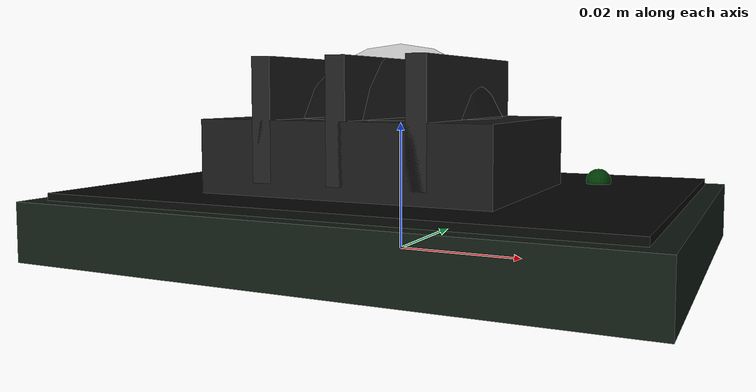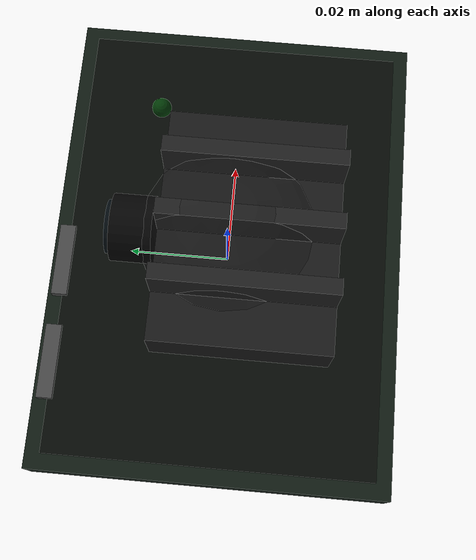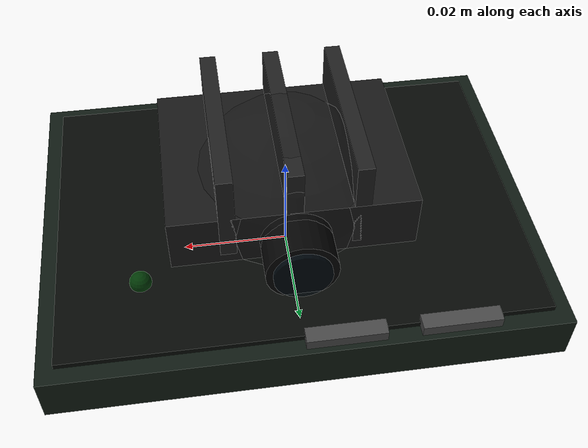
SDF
<?xml version="1.0" encoding="UTF-8"?>
<sdf version='1.9'>
  <model name='jetson_dome'>
    <self_collide>false</self_collide>
    <static>false</static>

    <link name='jetson_link'>
      <inertial>
        <pose>0 0 0.0115 0 0 0</pose>
        <mass>0.22</mass>
        <inertia>
          <ixx>0.00012</ixx>
          <iyy>0.00011</iyy>
          <izz>0.00018</izz>
          <ixy>0</ixy>
          <ixz>0</ixz>
          <iyz>0</iyz>
        </inertia>
      </inertial>

      <collision name='board_collision'>
        <pose>0 0 0.0045 0 0 0</pose>
        <geometry>
          <box>
            <size>0.092 0.068 0.009</size>
          </box>
        </geometry>
      </collision>

      <collision name='dome_collision'>
        <pose>0 0 0.0155 0 0 0</pose>
        <geometry>
          <cylinder>
            <radius>0.017</radius>
            <length>0.014</length>
          </cylinder>
        </geometry>
      </collision>

      <visual name='board_visual'>
        <pose>0 0 0.0045 0 0 0</pose>
        <geometry>
          <box>
            <size>0.092 0.068 0.009</size>
          </box>
        </geometry>
        <material>
          <ambient>0.06 0.10 0.07 1</ambient>
          <diffuse>0.06 0.10 0.07 1</diffuse>
          <specular>0.15 0.15 0.15 1</specular>
        </material>
      </visual>

      <visual name='board_top_visual'>
        <pose>0 0 0.0095 0 0 0</pose>
        <geometry>
          <box>
            <size>0.086 0.062 0.0012</size>
          </box>
        </geometry>
        <material>
          <ambient>0.02 0.03 0.02 1</ambient>
          <diffuse>0.02 0.03 0.02 1</diffuse>
          <specular>0.08 0.08 0.08 1</specular>
        </material>
      </visual>

      <visual name='dome_visual'>
        <pose>0 0 0.0155 0 0 0</pose>
        <geometry>
          <sphere>
            <radius>0.017</radius>
          </sphere>
        </geometry>
        <material>
          <ambient>0.05 0.05 0.05 0.22</ambient>
          <diffuse>0.10 0.10 0.10 0.22</diffuse>
          <specular>0.65 0.65 0.65 1</specular>
        </material>
      </visual>

      <visual name='camera_lens_visual'>
        <pose>0 0.018 0.0155 1.5708 0 0</pose>
        <geometry>
          <cylinder>
            <radius>0.0065</radius>
            <length>0.008</length>
          </cylinder>
        </geometry>
        <material>
          <ambient>0.01 0.01 0.01 1</ambient>
          <diffuse>0.01 0.01 0.01 1</diffuse>
          <specular>0.9 0.9 0.9 1</specular>
        </material>
      </visual>

      <visual name='camera_glass_visual'>
        <pose>0 0.0225 0.0155 1.5708 0 0</pose>
        <geometry>
          <cylinder>
            <radius>0.0052</radius>
            <length>0.001</length>
          </cylinder>
        </geometry>
        <material>
          <ambient>0.03 0.08 0.12 0.55</ambient>
          <diffuse>0.03 0.08 0.12 0.55</diffuse>
          <specular>0.95 0.95 0.95 1</specular>
          <emissive>0.0 0.02 0.04 0.18</emissive>
        </material>
      </visual>

      <visual name='heatsink_core_visual'>
        <pose>0 -0.004 0.015 0 0 0</pose>
        <geometry>
          <box>
            <size>0.045 0.034 0.012</size>
          </box>
        </geometry>
        <material>
          <ambient>0.09 0.09 0.09 1</ambient>
          <diffuse>0.09 0.09 0.09 1</diffuse>
          <specular>0.25 0.25 0.25 1</specular>
        </material>
      </visual>

      <visual name='heatsink_fin_left_visual'>
        <pose>-0.012 -0.004 0.021 0 0 0</pose>
        <geometry>
          <box>
            <size>0.003 0.034 0.018</size>
          </box>
        </geometry>
        <material>
          <ambient>0.12 0.12 0.12 1</ambient>
          <diffuse>0.12 0.12 0.12 1</diffuse>
          <specular>0.25 0.25 0.25 1</specular>
        </material>
      </visual>

      <visual name='heatsink_fin_center_visual'>
        <pose>0 -0.004 0.021 0 0 0</pose>
        <geometry>
          <box>
            <size>0.003 0.034 0.018</size>
          </box>
        </geometry>
        <material>
          <ambient>0.12 0.12 0.12 1</ambient>
          <diffuse>0.12 0.12 0.12 1</diffuse>
          <specular>0.25 0.25 0.25 1</specular>
        </material>
      </visual>

      <visual name='heatsink_fin_right_visual'>
        <pose>0.012 -0.004 0.021 0 0 0</pose>
        <geometry>
          <box>
            <size>0.003 0.034 0.018</size>
          </box>
        </geometry>
        <material>
          <ambient>0.12 0.12 0.12 1</ambient>
          <diffuse>0.12 0.12 0.12 1</diffuse>
          <specular>0.25 0.25 0.25 1</specular>
        </material>
      </visual>

      <visual name='usb_port_left_visual'>
        <pose>-0.026 0.0315 0.0075 0 0 0</pose>
        <geometry>
          <box>
            <size>0.014 0.003 0.007</size>
          </box>
        </geometry>
        <material>
          <ambient>0.28 0.28 0.28 1</ambient>
          <diffuse>0.28 0.28 0.28 1</diffuse>
          <specular>0.8 0.8 0.8 1</specular>
        </material>
      </visual>

      <visual name='usb_port_right_visual'>
        <pose>-0.006 0.0315 0.0075 0 0 0</pose>
        <geometry>
          <box>
            <size>0.014 0.003 0.007</size>
          </box>
        </geometry>
        <material>
          <ambient>0.28 0.28 0.28 1</ambient>
          <diffuse>0.28 0.28 0.28 1</diffuse>
          <specular>0.8 0.8 0.8 1</specular>
        </material>
      </visual>

      <visual name='status_led_visual'>
        <pose>0.028 0.016 0.0105 0 0 0</pose>
        <geometry>
          <sphere>
            <radius>0.002</radius>
          </sphere>
        </geometry>
        <material>
          <ambient>0.0 0.22 0.02 1</ambient>
          <diffuse>0.0 0.22 0.02 1</diffuse>
          <specular>0.5 0.5 0.5 1</specular>
          <emissive>0.0 0.12 0.01 1</emissive>
        </material>
      </visual>
    </link>
  </model>
</sdf>
